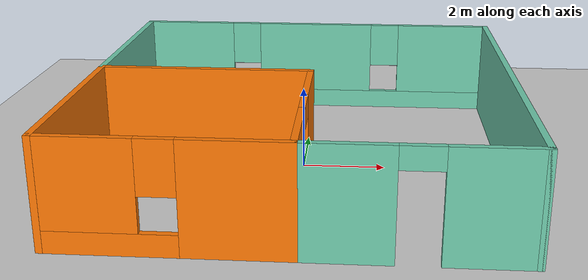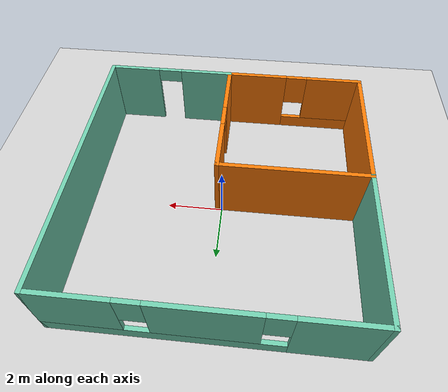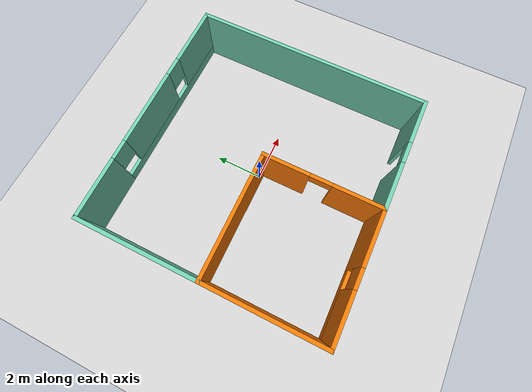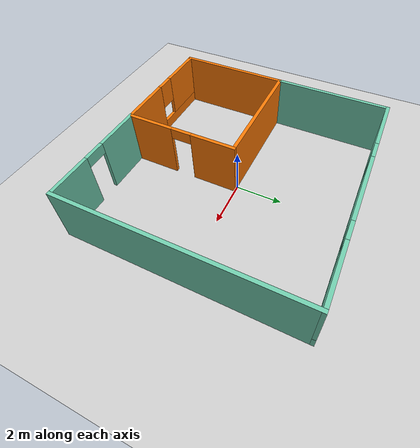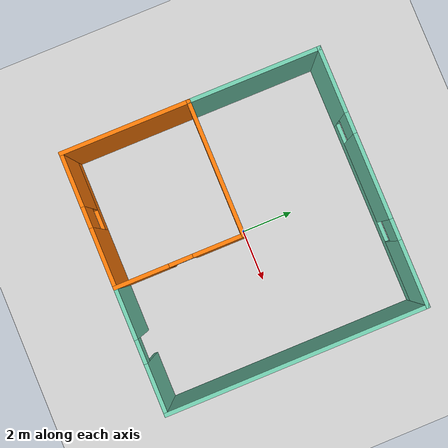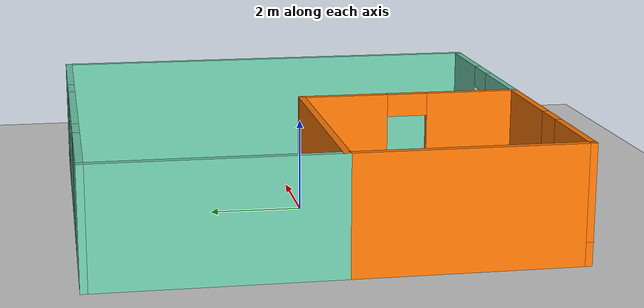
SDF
<sdf version="1.6">
 <world name="default">
  <model name="ground_plane">
   <static>1</static>
   <link name="link">
    <collision name="collision">
     <geometry><plane><normal>0 0 1</normal><size>100 100</size></plane></geometry>
     <surface><friction><ode><mu>100</mu><mu2>50</mu2></ode></friction></surface>
    </collision>
    <visual name="visual">
     <cast_shadows>0</cast_shadows>
     <geometry><plane><normal>0 0 1</normal><size>100 100</size></plane></geometry>
     <material>
      <script><uri>file://media/materials/scripts/gazebo.material</uri><name>Gazebo/Grey</name></script>
     </material>
    </visual>
   </link>
  </model>
  <model name="Building">
   <link name="Wall_0">
    <collision name="Wall_0_Collision">
     <geometry><box><size>10 0.15 2.5</size></box></geometry>
     <pose>0 0 1.25 0 -0 0</pose>
    </collision>
    <visual name="Wall_0_Visual">
     <pose>0 0 1.25 0 -0 0</pose>
     <geometry><box><size>10 0.15 2.5</size></box></geometry>
     <material>
      <script><uri>file://media/materials/scripts/gazebo.material</uri><name>Gazebo/Grey</name></script>
      <ambient>0.435294 0.796078 0.67451 1</ambient>
     </material>
    </visual>
    <pose>4.925 0 0 0 -0 1.5708</pose>
   </link>
   <link name="Wall_12">
    <collision name="Wall_12_Collision">
     <geometry><box><size>5 0.15 2.5</size></box></geometry>
     <pose>0 0 1.25 0 -0 0</pose>
    </collision>
    <visual name="Wall_12_Visual">
     <pose>0 0 1.25 0 -0 0</pose>
     <geometry><box><size>5 0.15 2.5</size></box></geometry>
     <material>
      <script><uri>file://media/materials/scripts/gazebo.material</uri><name>Gazebo/Grey</name></script>
      <ambient>0.996078 0.47451 0.0196078 1</ambient>
     </material>
    </visual>
    <pose>-4.925 -2.5 0 0 -0 1.5708</pose>
   </link>
   <link name="Wall_15">
    <collision name="Wall_15_Collision">
     <geometry><box><size>5.15 0.15 2.5</size></box></geometry>
     <pose>0 0 1.25 0 -0 0</pose>
    </collision>
    <visual name="Wall_15_Visual">
     <pose>0 0 1.25 0 -0 0</pose>
     <geometry><box><size>5.15 0.15 2.5</size></box></geometry>
     <material>
      <script><uri>file://media/materials/scripts/gazebo.material</uri><name>Gazebo/Grey</name></script>
      <ambient>0.435294 0.796078 0.67451 1</ambient>
     </material>
    </visual>
    <pose>-4.925 2.425 0 0 0 -1.5708</pose>
   </link>
   <link name="Wall_17">
    <pose>0.175 -2.5 0 0 0 -1.5708</pose>
    <visual name="Wall_17_Visual_0">
     <pose>-1.5019 0 1.25 0 -0 0</pose>
     <geometry><box><size>1.9962 0.15 2.5</size></box></geometry>
     <material>
      <script><uri>file://media/materials/scripts/gazebo.material</uri><name>Gazebo/Grey</name></script>
      <ambient>0.996078 0.47451 0.0196078 1</ambient>
     </material>
    </visual>
    <collision name="Wall_17_Collision_0">
     <geometry><box><size>1.9962 0.15 2.5</size></box></geometry>
     <pose>-1.5019 0 1.25 0 -0 0</pose>
    </collision>
    <visual name="Wall_17_Visual_1">
     <pose>1.4481 0 1.25 0 -0 0</pose>
     <geometry><box><size>2.1038 0.15 2.5</size></box></geometry>
     <material>
      <script><uri>file://media/materials/scripts/gazebo.material</uri><name>Gazebo/Grey</name></script>
      <ambient>0.996078 0.47451 0.0196078 1</ambient>
     </material>
    </visual>
    <collision name="Wall_17_Collision_1">
     <geometry><box><size>2.1038 0.15 2.5</size></box></geometry>
     <pose>1.4481 0 1.25 0 -0 0</pose>
    </collision>
    <visual name="Wall_17_Visual_2">
     <pose>-0.053797 0 2.25 0 -0 0</pose>
     <geometry><box><size>0.9 0.15 0.5</size></box></geometry>
     <material>
      <script><uri>file://media/materials/scripts/gazebo.material</uri><name>Gazebo/Grey</name></script>
      <ambient>0.996078 0.47451 0.0196078 1</ambient>
     </material>
    </visual>
    <collision name="Wall_17_Collision_2">
     <geometry><box><size>0.9 0.15 0.5</size></box></geometry>
     <pose>-0.053797 0 2.25 0 -0 0</pose>
    </collision>
   </link>
   <link name="Wall_18">
    <pose>-2.375 -4.925 0 0 -0 3.14159</pose>
    <visual name="Wall_18_Visual_0">
     <pose>-1.45794 0 1.25 0 -0 0</pose>
     <geometry><box><size>2.33413 0.15 2.5</size></box></geometry>
     <material>
      <script><uri>file://media/materials/scripts/gazebo.material</uri><name>Gazebo/Grey</name></script>
      <ambient>0.996078 0.47451 0.0196078 1</ambient>
     </material>
    </visual>
    <collision name="Wall_18_Collision_0">
     <geometry><box><size>2.33413 0.15 2.5</size></box></geometry>
     <pose>-1.45794 0 1.25 0 -0 0</pose>
    </collision>
    <visual name="Wall_18_Visual_1">
     <pose>1.16706 0 0.25 0 -0 0</pose>
     <geometry><box><size>2.91587 0.15 0.5</size></box></geometry>
     <material>
      <script><uri>file://media/materials/scripts/gazebo.material</uri><name>Gazebo/Grey</name></script>
      <ambient>0.996078 0.47451 0.0196078 1</ambient>
     </material>
    </visual>
    <collision name="Wall_18_Collision_1">
     <geometry><box><size>2.91587 0.15 0.5</size></box></geometry>
     <pose>1.16706 0 0.25 0 -0 0</pose>
    </collision>
    <visual name="Wall_18_Visual_2">
     <pose>1.56706 0 1.5 0 -0 0</pose>
     <geometry><box><size>2.11587 0.15 2</size></box></geometry>
     <material>
      <script><uri>file://media/materials/scripts/gazebo.material</uri><name>Gazebo/Grey</name></script>
      <ambient>0.996078 0.47451 0.0196078 1</ambient>
     </material>
    </visual>
    <collision name="Wall_18_Collision_2">
     <geometry><box><size>2.11587 0.15 2</size></box></geometry>
     <pose>1.56706 0 1.5 0 -0 0</pose>
    </collision>
    <visual name="Wall_18_Visual_3">
     <pose>0.109129 0 1.9 0 -0 0</pose>
     <geometry><box><size>0.8 0.15 1.2</size></box></geometry>
     <material>
      <script><uri>file://media/materials/scripts/gazebo.material</uri><name>Gazebo/Grey</name></script>
      <ambient>0.996078 0.47451 0.0196078 1</ambient>
     </material>
    </visual>
    <collision name="Wall_18_Collision_3">
     <geometry><box><size>0.8 0.15 1.2</size></box></geometry>
     <pose>0.109129 0 1.9 0 -0 0</pose>
    </collision>
   </link>
   <link name="Wall_20">
    <pose>2.55 -4.925 0 0 -0 0</pose>
    <visual name="Wall_20_Visual_0">
     <pose>-1.43275 0 1.25 0 -0 0</pose>
     <geometry><box><size>2.03449 0.15 2.5</size></box></geometry>
     <material>
      <script><uri>file://media/materials/scripts/gazebo.material</uri><name>Gazebo/Grey</name></script>
      <ambient>0.435294 0.796078 0.67451 1</ambient>
     </material>
    </visual>
    <collision name="Wall_20_Collision_0">
     <geometry><box><size>2.03449 0.15 2.5</size></box></geometry>
     <pose>-1.43275 0 1.25 0 -0 0</pose>
    </collision>
    <visual name="Wall_20_Visual_1">
     <pose>1.46725 0 1.25 0 -0 0</pose>
     <geometry><box><size>1.96551 0.15 2.5</size></box></geometry>
     <material>
      <script><uri>file://media/materials/scripts/gazebo.material</uri><name>Gazebo/Grey</name></script>
      <ambient>0.435294 0.796078 0.67451 1</ambient>
     </material>
    </visual>
    <collision name="Wall_20_Collision_1">
     <geometry><box><size>1.96551 0.15 2.5</size></box></geometry>
     <pose>1.46725 0 1.25 0 -0 0</pose>
    </collision>
    <visual name="Wall_20_Visual_2">
     <pose>0.034491 0 2.25 0 -0 0</pose>
     <geometry><box><size>0.9 0.15 0.5</size></box></geometry>
     <material>
      <script><uri>file://media/materials/scripts/gazebo.material</uri><name>Gazebo/Grey</name></script>
      <ambient>0.435294 0.796078 0.67451 1</ambient>
     </material>
    </visual>
    <collision name="Wall_20_Collision_2">
     <geometry><box><size>0.9 0.15 0.5</size></box></geometry>
     <pose>0.034491 0 2.25 0 -0 0</pose>
    </collision>
   </link>
   <link name="Wall_25">
    <collision name="Wall_25_Collision">
     <geometry><box><size>5.25 0.15 2.5</size></box></geometry>
     <pose>0 0 1.25 0 -0 0</pose>
    </collision>
    <visual name="Wall_25_Visual">
     <pose>0 0 1.25 0 -0 0</pose>
     <geometry><box><size>5.25 0.15 2.5</size></box></geometry>
     <material>
      <script><uri>file://media/materials/scripts/gazebo.material</uri><name>Gazebo/Grey</name></script>
      <ambient>0.996078 0.47451 0.0196078 1</ambient>
     </material>
    </visual>
    <pose>-2.375 -0.075 0 0 -0 3.14159</pose>
   </link>
   <link name="Wall_32">
    <pose>0 4.925 0 0 -0 0</pose>
    <visual name="Wall_32_Visual_0">
     <pose>-3.72081 0 1.25 0 -0 0</pose>
     <geometry><box><size>2.55837 0.15 2.5</size></box></geometry>
     <material>
      <script><uri>file://media/materials/scripts/gazebo.material</uri><name>Gazebo/Grey</name></script>
      <ambient>0.435294 0.796078 0.67451 1</ambient>
     </material>
    </visual>
    <collision name="Wall_32_Collision_0">
     <geometry><box><size>2.55837 0.15 2.5</size></box></geometry>
     <pose>-3.72081 0 1.25 0 -0 0</pose>
    </collision>
    <visual name="Wall_32_Visual_1">
     <pose>1.27919 0 0.25 0 -0 0</pose>
     <geometry><box><size>7.44163 0.15 0.5</size></box></geometry>
     <material>
      <script><uri>file://media/materials/scripts/gazebo.material</uri><name>Gazebo/Grey</name></script>
      <ambient>0.435294 0.796078 0.67451 1</ambient>
     </material>
    </visual>
    <collision name="Wall_32_Collision_1">
     <geometry><box><size>7.44163 0.15 0.5</size></box></geometry>
     <pose>1.27919 0 0.25 0 -0 0</pose>
    </collision>
    <visual name="Wall_32_Visual_2">
     <pose>-0.01016 0 1.5 0 -0 0</pose>
     <geometry><box><size>3.26294 0.15 2</size></box></geometry>
     <material>
      <script><uri>file://media/materials/scripts/gazebo.material</uri><name>Gazebo/Grey</name></script>
      <ambient>0.435294 0.796078 0.67451 1</ambient>
     </material>
    </visual>
    <collision name="Wall_32_Collision_2">
     <geometry><box><size>3.26294 0.15 2</size></box></geometry>
     <pose>-0.01016 0 1.5 0 -0 0</pose>
    </collision>
    <visual name="Wall_32_Visual_3">
     <pose>3.71066 0 1.5 0 -0 0</pose>
     <geometry><box><size>2.57869 0.15 2</size></box></geometry>
     <material>
      <script><uri>file://media/materials/scripts/gazebo.material</uri><name>Gazebo/Grey</name></script>
      <ambient>0.435294 0.796078 0.67451 1</ambient>
     </material>
    </visual>
    <collision name="Wall_32_Collision_3">
     <geometry><box><size>2.57869 0.15 2</size></box></geometry>
     <pose>3.71066 0 1.5 0 -0 0</pose>
    </collision>
    <visual name="Wall_32_Visual_4">
     <pose>-2.04163 0 1.9 0 -0 0</pose>
     <geometry><box><size>0.8 0.15 1.2</size></box></geometry>
     <material>
      <script><uri>file://media/materials/scripts/gazebo.material</uri><name>Gazebo/Grey</name></script>
      <ambient>0.435294 0.796078 0.67451 1</ambient>
     </material>
    </visual>
    <collision name="Wall_32_Collision_4">
     <geometry><box><size>0.8 0.15 1.2</size></box></geometry>
     <pose>-2.04163 0 1.9 0 -0 0</pose>
    </collision>
    <visual name="Wall_32_Visual_5">
     <pose>2.02131 0 1.9 0 -0 0</pose>
     <geometry><box><size>0.8 0.15 1.2</size></box></geometry>
     <material>
      <script><uri>file://media/materials/scripts/gazebo.material</uri><name>Gazebo/Grey</name></script>
      <ambient>0.435294 0.796078 0.67451 1</ambient>
     </material>
    </visual>
    <collision name="Wall_32_Collision_5">
     <geometry><box><size>0.8 0.15 1.2</size></box></geometry>
     <pose>2.02131 0 1.9 0 -0 0</pose>
    </collision>
   </link>
   <static>1</static>
  </model>
 </world>
</sdf>
